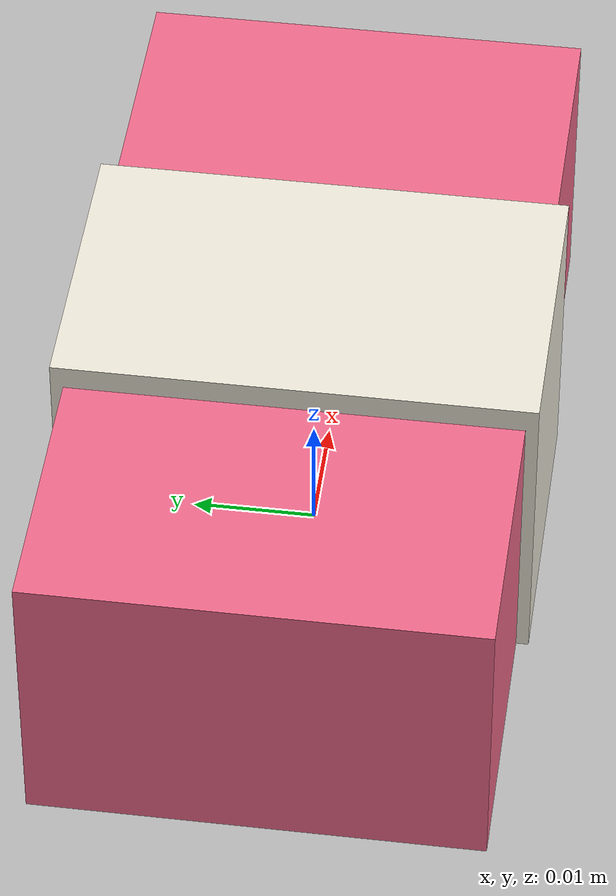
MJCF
<mujoco model="eraser">
  <asset>
    <material name="eraser_pink" rgba="0.95 0.42 0.55 1" specular="0.05" shininess="0.05" />
    <material name="eraser_white" rgba="0.94 0.92 0.86 1" specular="0.05" shininess="0.05" />
    <material name="collision_invisible" rgba="0.8 0.8 0.8 0" />
  </asset>
  <worldbody>
    <body>
      <body name="object">
        <geom name="eraser_collision" type="box" pos="0 0 0.012" size="0.034 0.018 0.012" material="collision_invisible" group="0" friction="1.2 0.4 0.1" />
        <geom name="eraser_body_visual" type="box" pos="0 0 0.012" size="0.034 0.018 0.012" material="eraser_pink" group="1" contype="0" conaffinity="0" />
        <geom name="eraser_band_visual" type="box" pos="0 0 0.013" size="0.012 0.019 0.013" material="eraser_white" group="1" contype="0" conaffinity="0" />
      </body>
      <site rgba="0 0 0 0" size="0.005" pos="0 0 0.000" name="bottom_site" />
      <site rgba="0 0 0 0" size="0.005" pos="0 0 0.024" name="top_site" />
      <site rgba="0 0 0 0" size="0.005" pos="0.034 0.018 0.012" name="horizontal_radius_site" />
    </body>
  </worldbody>
</mujoco>
